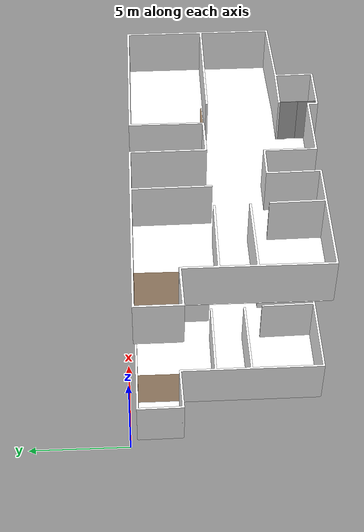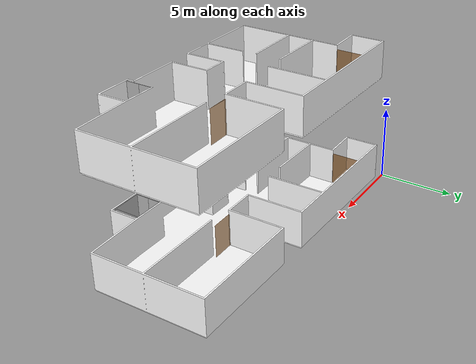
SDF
<sdf version="1.7">
 <world name="sim_world">
  <physics name="10ms" type="ode">
   <max_step_size>0.01</max_step_size>
   <real_time_factor>1.0</real_time_factor>
  </physics>
  <plugin filename="libignition-gazebo-physics-system.so" name="ignition::gazebo::systems::Physics"/>
  <plugin filename="libignition-gazebo-user-commands-system.so" name="ignition::gazebo::systems::UserCommands"/>
  <plugin filename="libignition-gazebo-scene-broadcaster-system.so" name="ignition::gazebo::systems::SceneBroadcaster"/>
  <scene><ambient>1 1 1</ambient><background>0.8 0.8 0.8</background><grid>false</grid></scene>
  <light type="directional" name="sun">
   <pose>0 0 10 0 0 0</pose>
   <diffuse>1 1 1 1</diffuse>
   <specular>0.2 0.2 0.2 1</specular>
   <attenuation>
    <range>1000</range>
    <constant>0.09</constant>
    <linear>0.001</linear>
    <quadratic>0.001</quadratic>
   </attenuation>
   <direction>-0.5 0.1 -0.9</direction>
  </light>
  <model name="null1">
   <pose>2.696709362703367 -1.4758853085117967 0.0 0 0 -1.5733022700128414</pose>
   <link name="right">
    <pose>0 0 1.11 0 0 0</pose>
    <visual name="right_visual">
     <geometry><box><size>2.102248517358333 0.03 2.2</size></box></geometry>
     <material>
      <ambient>0.5 0.25 0 0.6</ambient>
      <diffuse>0.5 0.25 0 0.6</diffuse>
      <pbr><metal><metalness>0.0</metalness></metal></pbr>
     </material>
    </visual>
    <collision name="right_collision">
     <geometry><box><size>2.102248517358333 0.03 2.2</size></box></geometry>
     <surface><contact><collide_bitmask>0x02</collide_bitmask></contact></surface>
    </collision>
    <inertial>
     <mass>50.0</mass>
     <inertia><ixx>20.17041666666667</ixx><iyy>38.58103678639712</iyy><izz>18.418120119730453</izz></inertia>
    </inertial>
   </link>
   <joint name="right_joint" type="revolute">
    <parent>world</parent>
    <child>right</child>
    <axis><xyz>0 0 -1</xyz><limit><lower>0</lower><upper>1.57</upper></limit></axis>
    <pose>1.0561242586791664 0 0 0 0 0</pose>
   </joint>
   <plugin name="door" filename="libdoor.so">
    <v_max_door>0.5</v_max_door>
    <a_max_door>0.3</a_max_door>
    <a_nom_door>0.15</a_nom_door>
    <dx_min_door>0.01</dx_min_door>
    <f_max_door>500.0</f_max_door>
    <door name="null1" type="SwingDoor" left_joint_name="empty_joint" right_joint_name="right_joint"/>
   </plugin>
  </model>
  <model name="null2">
   <pose>13.289009474905757 -4.1263730059054815 0.0 0 0 -3.118719911647879</pose>
   <link name="right">
    <pose>0 0 1.11 0 0 0</pose>
    <visual name="right_visual">
     <geometry><box><size>1.5188961164264467 0.03 2.2</size></box></geometry>
     <material>
      <ambient>0.5 0.25 0 0.6</ambient>
      <diffuse>0.5 0.25 0 0.6</diffuse>
      <pbr><metal><metalness>0.0</metalness></metal></pbr>
     </material>
    </visual>
    <collision name="right_collision">
     <geometry><box><size>1.5188961164264467 0.03 2.2</size></box></geometry>
     <surface><contact><collide_bitmask>0x02</collide_bitmask></contact></surface>
    </collision>
    <inertial>
     <mass>50.0</mass>
     <inertia><ixx>20.17041666666667</ixx><iyy>29.779355885397266</iyy><izz>9.616439218730592</izz></inertia>
    </inertial>
   </link>
   <joint name="right_joint" type="prismatic">
    <parent>world</parent>
    <child>right</child>
    <axis>
     <xyz>1 0 0</xyz>
     <limit><lower>0.0</lower><upper>1.5288961164264467</upper><effort>500.0</effort></limit>
    </axis>
   </joint>
   <plugin name="door" filename="libdoor.so">
    <v_max_door>0.2</v_max_door>
    <a_max_door>0.2</a_max_door>
    <a_nom_door>0.08</a_nom_door>
    <dx_min_door>0.001</dx_min_door>
    <f_max_door>100.0</f_max_door>
    <door name="null2" type="SlidingDoor" left_joint_name="empty_joint" right_joint_name="right_joint"/>
   </plugin>
  </model>
  <include><name>floor_L1</name><uri>model://floor_L1</uri></include>
  <model name="null3">
   <pose>2.7208773282506087 -1.4401966790662515 7.5 0 0 -1.5770408884630145</pose>
   <link name="right">
    <pose>0 0 1.11 0 0 0</pose>
    <visual name="right_visual">
     <geometry><box><size>2.095452502618806 0.03 2.2</size></box></geometry>
     <material>
      <ambient>0.5 0.25 0 0.6</ambient>
      <diffuse>0.5 0.25 0 0.6</diffuse>
      <pbr><metal><metalness>0.0</metalness></metal></pbr>
     </material>
    </visual>
    <collision name="right_collision">
     <geometry><box><size>2.095452502618806 0.03 2.2</size></box></geometry>
     <surface><contact><collide_bitmask>0x02</collide_bitmask></contact></surface>
    </collision>
    <inertial>
     <mass>50.0</mass>
     <inertia><ixx>20.17041666666667</ixx><iyy>38.46217162804758</iyy><izz>18.299254961380903</izz></inertia>
    </inertial>
   </link>
   <joint name="right_joint" type="revolute">
    <parent>world</parent>
    <child>right</child>
    <axis><xyz>0 0 -1</xyz><limit><lower>0</lower><upper>1.57</upper></limit></axis>
    <pose>1.052726251309403 0 0 0 0 0</pose>
   </joint>
   <plugin name="door" filename="libdoor.so">
    <v_max_door>0.5</v_max_door>
    <a_max_door>0.3</a_max_door>
    <a_nom_door>0.15</a_nom_door>
    <dx_min_door>0.01</dx_min_door>
    <f_max_door>500.0</f_max_door>
    <door name="null3" type="SwingDoor" left_joint_name="empty_joint" right_joint_name="right_joint"/>
   </plugin>
  </model>
  <model name="null4">
   <pose>13.269146396699625 -4.121611214964689 7.5 0 0 -3.1224585300980525</pose>
   <link name="right">
    <pose>0 0 1.11 0 0 0</pose>
    <visual name="right_visual">
     <geometry><box><size>1.5139769980286555 0.03 2.2</size></box></geometry>
     <material>
      <ambient>0.5 0.25 0 0.6</ambient>
      <diffuse>0.5 0.25 0 0.6</diffuse>
      <pbr><metal><metalness>0.0</metalness></metal></pbr>
     </material>
    </visual>
    <collision name="right_collision">
     <geometry><box><size>1.5139769980286555 0.03 2.2</size></box></geometry>
     <surface><contact><collide_bitmask>0x02</collide_bitmask></contact></surface>
    </collision>
    <inertial>
     <mass>50.0</mass>
     <inertia><ixx>20.17041666666667</ixx><iyy>29.717193127332752</iyy><izz>9.554276460666083</izz></inertia>
    </inertial>
   </link>
   <joint name="right_joint" type="prismatic">
    <parent>world</parent>
    <child>right</child>
    <axis>
     <xyz>1 0 0</xyz>
     <limit><lower>0.0</lower><upper>1.5239769980286555</upper><effort>500.0</effort></limit>
    </axis>
   </joint>
   <plugin name="door" filename="libdoor.so">
    <v_max_door>0.2</v_max_door>
    <a_max_door>0.2</a_max_door>
    <a_nom_door>0.08</a_nom_door>
    <dx_min_door>0.001</dx_min_door>
    <f_max_door>100.0</f_max_door>
    <door name="null4" type="SlidingDoor" left_joint_name="empty_joint" right_joint_name="right_joint"/>
   </plugin>
  </model>
  <include><name>floor_L2</name><uri>model://floor_L2</uri><pose>0 0 7.5 0 0 0</pose></include>
  <model name="ShaftDoor_lift_L1_door">
   <pose>13.974046214020245 -9.08928062769908 0.0 0 0 1.57</pose>
   <link name="right_door">
    <pose>0.45 0 1.25 0 0 0</pose>
    <visual name="right_door_visual">
     <geometry><box><size>0.9 0.03 2.5</size></box></geometry>
     <material>
      <ambient>0.5 0.5 0.5 1</ambient>
      <diffuse>0.7 0.7 0.7 1</diffuse>
      <specular>0.6 0.6 0.6 1</specular>
      <emissive>0.1 0.1 0.1 1</emissive>
     </material>
    </visual>
    <collision name="right_door_collision">
     <geometry><box><size>0.9 0.03 2.5</size></box></geometry>
     <surface><contact><collide_bitmask>0x02</collide_bitmask></contact></surface>
    </collision>
   </link>
   <joint name="right_joint" type="prismatic">
    <parent>world</parent>
    <child>right_door</child>
    <axis><xyz>1 0 0</xyz><limit><lower>0</lower><upper>0.9</upper></limit></axis>
   </joint>
   <link name="left_door">
    <pose>-0.45 0 1.25 0 0 0</pose>
    <visual name="left_door_visual">
     <geometry><box><size>0.9 0.03 2.5</size></box></geometry>
     <material>
      <ambient>0.5 0.5 0.5 1</ambient>
      <diffuse>0.7 0.7 0.7 1</diffuse>
      <specular>0.6 0.6 0.6 1</specular>
      <emissive>0.1 0.1 0.1 1</emissive>
     </material>
    </visual>
    <collision name="left_door_collision">
     <geometry><box><size>0.9 0.03 2.5</size></box></geometry>
     <surface><contact><collide_bitmask>0x02</collide_bitmask></contact></surface>
    </collision>
   </link>
   <joint name="left_joint" type="prismatic">
    <parent>world</parent>
    <child>left_door</child>
    <axis><xyz>1 0 0</xyz><limit><lower>-0.9</lower><upper>0</upper></limit></axis>
   </joint>
   <link name="ramp">
    <pose>0 0 -0.025 0 0 0</pose>
    <visual name="ramp_visual">
     <geometry><box><size>1.8 0.1 0.05</size></box></geometry>
     <material>
      <ambient>0.5 0.5 0.5 1</ambient>
      <diffuse>0.7 0.7 0.7 1</diffuse>
      <specular>0.6 0.6 0.6 1</specular>
      <emissive>0.1 0.1 0.1 1</emissive>
     </material>
    </visual>
    <collision name="ramp_collision">
     <geometry><box><size>1.8 0.1 0.05</size></box></geometry>
     <surface><contact><collide_bitmask>0x02</collide_bitmask></contact></surface>
    </collision>
   </link>
   <joint name="ramp_joint" type="fixed"><parent>world</parent><child>ramp</child></joint>
   <plugin name="door" filename="libdoor.so">
    <v_max_door>0.3</v_max_door>
    <a_max_door>0.2</a_max_door>
    <a_nom_door>0.1</a_nom_door>
    <dx_min_door>0.0001</dx_min_door>
    <f_max_door>35.0</f_max_door>
    <door left_joint_name="left_joint" name="ShaftDoor_lift_L1_door" right_joint_name="right_joint" type="DoubleSlidingDoor"/>
   </plugin>
  </model>
  <model name="ShaftDoor_lift_L2_door">
   <pose>13.974046214020245 -9.08928062769908 7.5 0 0 1.57</pose>
   <link name="right_door">
    <pose>0.45 0 1.25 0 0 0</pose>
    <visual name="right_door_visual">
     <geometry><box><size>0.9 0.03 2.5</size></box></geometry>
     <material>
      <ambient>0.5 0.5 0.5 1</ambient>
      <diffuse>0.7 0.7 0.7 1</diffuse>
      <specular>0.6 0.6 0.6 1</specular>
      <emissive>0.1 0.1 0.1 1</emissive>
     </material>
    </visual>
    <collision name="right_door_collision">
     <geometry><box><size>0.9 0.03 2.5</size></box></geometry>
     <surface><contact><collide_bitmask>0x02</collide_bitmask></contact></surface>
    </collision>
   </link>
   <joint name="right_joint" type="prismatic">
    <parent>world</parent>
    <child>right_door</child>
    <axis><xyz>1 0 0</xyz><limit><lower>0</lower><upper>0.9</upper></limit></axis>
   </joint>
   <link name="left_door">
    <pose>-0.45 0 1.25 0 0 0</pose>
    <visual name="left_door_visual">
     <geometry><box><size>0.9 0.03 2.5</size></box></geometry>
     <material>
      <ambient>0.5 0.5 0.5 1</ambient>
      <diffuse>0.7 0.7 0.7 1</diffuse>
      <specular>0.6 0.6 0.6 1</specular>
      <emissive>0.1 0.1 0.1 1</emissive>
     </material>
    </visual>
    <collision name="left_door_collision">
     <geometry><box><size>0.9 0.03 2.5</size></box></geometry>
     <surface><contact><collide_bitmask>0x02</collide_bitmask></contact></surface>
    </collision>
   </link>
   <joint name="left_joint" type="prismatic">
    <parent>world</parent>
    <child>left_door</child>
    <axis><xyz>1 0 0</xyz><limit><lower>-0.9</lower><upper>0</upper></limit></axis>
   </joint>
   <link name="ramp">
    <pose>0 0 -0.025 0 0 0</pose>
    <visual name="ramp_visual">
     <geometry><box><size>1.8 0.1 0.05</size></box></geometry>
     <material>
      <ambient>0.5 0.5 0.5 1</ambient>
      <diffuse>0.7 0.7 0.7 1</diffuse>
      <specular>0.6 0.6 0.6 1</specular>
      <emissive>0.1 0.1 0.1 1</emissive>
     </material>
    </visual>
    <collision name="ramp_collision">
     <geometry><box><size>1.8 0.1 0.05</size></box></geometry>
     <surface><contact><collide_bitmask>0x02</collide_bitmask></contact></surface>
    </collision>
   </link>
   <joint name="ramp_joint" type="fixed"><parent>world</parent><child>ramp</child></joint>
   <plugin name="door" filename="libdoor.so">
    <v_max_door>0.3</v_max_door>
    <a_max_door>0.2</a_max_door>
    <a_nom_door>0.1</a_nom_door>
    <dx_min_door>0.0001</dx_min_door>
    <f_max_door>35.0</f_max_door>
    <door left_joint_name="left_joint" name="ShaftDoor_lift_L2_door" right_joint_name="right_joint" type="DoubleSlidingDoor"/>
   </plugin>
  </model>
  <model name="lift">
   <link name="platform">
    <inertial>
     <mass>1200</mass>
     <inertia><ixx>400.25000000000006</ixx><iyy>324.25</iyy><izz>724.0</izz></inertia>
    </inertial>
    <visual name="floor_visual">
     <pose>0 0 -0.025 0 0 0</pose>
     <geometry><box><size>2.0 1.8 0.05</size></box></geometry>
     <material>
      <ambient>0.5 0.5 0.5 1</ambient>
      <diffuse>0.7 0.7 0.7 1</diffuse>
      <specular>0.6 0.6 0.6 1</specular>
      <emissive>0.1 0.1 0.1 1</emissive>
     </material>
    </visual>
    <collision name="floor_collision">
     <pose>0 0 -0.025 0 0 0</pose>
     <geometry><box><size>2.0 1.8 0.05</size></box></geometry>
     <surface><contact><collide_bitmask>0x01</collide_bitmask></contact></surface>
    </collision>
    <visual name="frontwall1_visual">
     <pose>0.0 0.875 1.25 0 0 0</pose>
     <geometry><box><size>2.0 0.05 2.5</size></box></geometry>
     <material>
      <ambient>0.5 0.5 0.5 1</ambient>
      <diffuse>0.7 0.7 0.7 1</diffuse>
      <specular>0.6 0.6 0.6 1</specular>
      <emissive>0.1 0.1 0.1 1</emissive>
     </material>
    </visual>
    <collision name="frontwall1_collision">
     <pose>0.0 0.875 1.25 0 0 0</pose>
     <geometry><box><size>2.0 0.05 2.5</size></box></geometry>
     <surface><contact><collide_bitmask>0x01</collide_bitmask></contact></surface>
    </collision>
    <visual name="backwall1_visual">
     <pose>0.0 -0.875 1.25 0 0 0</pose>
     <geometry><box><size>2.0 0.05 2.5</size></box></geometry>
     <material>
      <ambient>0.5 0.5 0.5 1</ambient>
      <diffuse>0.7 0.7 0.7 1</diffuse>
      <specular>0.6 0.6 0.6 1</specular>
      <emissive>0.1 0.1 0.1 1</emissive>
     </material>
    </visual>
    <collision name="backwall1_collision">
     <pose>0.0 -0.875 1.25 0 0 0</pose>
     <geometry><box><size>2.0 0.05 2.5</size></box></geometry>
     <surface><contact><collide_bitmask>0x01</collide_bitmask></contact></surface>
    </collision>
    <visual name="leftwall1_visual">
     <pose>-0.975 -0.875 1.25 0 0 1.5707963267948966</pose>
     <geometry><box><size>0.050000000000000044 0.05 2.5</size></box></geometry>
     <material>
      <ambient>0.5 0.5 0.5 1</ambient>
      <diffuse>0.7 0.7 0.7 1</diffuse>
      <specular>0.6 0.6 0.6 1</specular>
      <emissive>0.1 0.1 0.1 1</emissive>
     </material>
    </visual>
    <collision name="leftwall1_collision">
     <pose>-0.975 -0.875 1.25 0 0 1.5707963267948966</pose>
     <geometry><box><size>0.050000000000000044 0.05 2.5</size></box></geometry>
     <surface><contact><collide_bitmask>0x01</collide_bitmask></contact></surface>
    </collision>
    <visual name="leftwall2_visual">
     <pose>-0.975 0.875 1.25 0 0 1.5707963267948966</pose>
     <geometry><box><size>0.050000000000000044 0.05 2.5</size></box></geometry>
     <material>
      <ambient>0.5 0.5 0.5 1</ambient>
      <diffuse>0.7 0.7 0.7 1</diffuse>
      <specular>0.6 0.6 0.6 1</specular>
      <emissive>0.1 0.1 0.1 1</emissive>
     </material>
    </visual>
    <collision name="leftwall2_collision">
     <pose>-0.975 0.875 1.25 0 0 1.5707963267948966</pose>
     <geometry><box><size>0.050000000000000044 0.05 2.5</size></box></geometry>
     <surface><contact><collide_bitmask>0x01</collide_bitmask></contact></surface>
    </collision>
    <visual name="rightwall1_visual">
     <pose>0.975 0.0 1.25 0 0 1.5707963267948966</pose>
     <geometry><box><size>1.7 0.05 2.5</size></box></geometry>
     <material>
      <ambient>0.5 0.5 0.5 1</ambient>
      <diffuse>0.7 0.7 0.7 1</diffuse>
      <specular>0.6 0.6 0.6 1</specular>
      <emissive>0.1 0.1 0.1 1</emissive>
     </material>
    </visual>
    <collision name="rightwall1_collision">
     <pose>0.975 0.0 1.25 0 0 1.5707963267948966</pose>
     <geometry><box><size>1.7 0.05 2.5</size></box></geometry>
     <surface><contact><collide_bitmask>0x01</collide_bitmask></contact></surface>
    </collision>
   </link>
   <joint name="cabin_joint" type="prismatic">
    <parent>world</parent>
    <child>platform</child>
    <axis><xyz>0 0 1</xyz></axis>
   </joint>
   <link name="CabinDoor_lift_door_right_door">
    <pose>-0.97464165298017 0.44999985731932557 1.25 0 0 1.57</pose>
    <visual name="CabinDoor_lift_door_right_door_visual">
     <geometry><box><size>0.9 0.03 2.5</size></box></geometry>
     <material>
      <ambient>0.5 0.5 0.5 1</ambient>
      <diffuse>0.7 0.7 0.7 1</diffuse>
      <specular>0.6 0.6 0.6 1</specular>
      <emissive>0.1 0.1 0.1 1</emissive>
     </material>
    </visual>
    <collision name="CabinDoor_lift_door_right_door_collision">
     <geometry><box><size>0.9 0.03 2.5</size></box></geometry>
     <surface><contact><collide_bitmask>0x02</collide_bitmask></contact></surface>
    </collision>
   </link>
   <joint name="CabinDoor_lift_door_right_joint" type="prismatic">
    <parent>platform</parent>
    <child>CabinDoor_lift_door_right_door</child>
    <axis><xyz>1 0 0</xyz><limit><lower>0</lower><upper>0.9</upper></limit></axis>
   </joint>
   <link name="CabinDoor_lift_door_left_door">
    <pose>-0.9753583470198299 -0.44999985731932557 1.25 0 0 1.57</pose>
    <visual name="CabinDoor_lift_door_left_door_visual">
     <geometry><box><size>0.9 0.03 2.5</size></box></geometry>
     <material>
      <ambient>0.5 0.5 0.5 1</ambient>
      <diffuse>0.7 0.7 0.7 1</diffuse>
      <specular>0.6 0.6 0.6 1</specular>
      <emissive>0.1 0.1 0.1 1</emissive>
     </material>
    </visual>
    <collision name="CabinDoor_lift_door_left_door_collision">
     <geometry><box><size>0.9 0.03 2.5</size></box></geometry>
     <surface><contact><collide_bitmask>0x02</collide_bitmask></contact></surface>
    </collision>
   </link>
   <joint name="CabinDoor_lift_door_left_joint" type="prismatic">
    <parent>platform</parent>
    <child>CabinDoor_lift_door_left_door</child>
    <axis><xyz>1 0 0</xyz><limit><lower>-0.9</lower><upper>0</upper></limit></axis>
   </joint>
   <plugin name="door" filename="libdoor.so">
    <v_max_door>0.3</v_max_door>
    <a_max_door>0.2</a_max_door>
    <a_nom_door>0.1</a_nom_door>
    <dx_min_door>0.0001</dx_min_door>
    <f_max_door>35.0</f_max_door>
    <door left_joint_name="CabinDoor_lift_door_left_joint" name="CabinDoor_lift_door" right_joint_name="CabinDoor_lift_door_right_joint" type="DoubleSlidingDoor"/>
   </plugin>
   <plugin name="lift" filename="liblift.so">
    <lift_name>lift</lift_name>
    <floor name="L1" elevation="0.0">
     <door_pair cabin_door="CabinDoor_lift_door" shaft_door="ShaftDoor_lift_L1_door"/>
    </floor>
    <floor name="L2" elevation="7.5">
     <door_pair cabin_door="CabinDoor_lift_door" shaft_door="ShaftDoor_lift_L2_door"/>
    </floor>
    <initial_floor>L1</initial_floor>
    <v_max_cabin>2.0</v_max_cabin>
    <a_max_cabin>1.2</a_max_cabin>
    <a_nom_cabin>1.0</a_nom_cabin>
    <dx_min_cabin>0.001</dx_min_cabin>
    <f_max_cabin>25323.0</f_max_cabin>
    <cabin_joint_name>cabin_joint</cabin_joint_name>
   </plugin>
   <pose>15.024046214020245 -9.08928062769908 0 0 0 0.0</pose>
  </model>
  <rmf_charger_waypoints name="charger_waypoints">
   <rmf_vertex name="w1" x="1.4636949791993532" y="-1.4226328173048066" level="L1"/>
   <rmf_vertex name="w9" x="18.76310893247248" y="-5.523609303809365" level="L1"/>
   <rmf_vertex name="w8" x="18.978043686139245" y="-2.2643002034297415" level="L1"/>
   <rmf_vertex name="w11" x="13.334584267634808" y="-8.941988845466106" level="L2"/>
  </rmf_charger_waypoints>
 </world>
</sdf>

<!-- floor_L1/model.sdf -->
<sdf version="1.7">
  <model name="floor_L1">
    <static>true</static>
    <link name="floor_1">
      <visual name="visual">
        <geometry>
          <mesh>
            <uri>model://floor_L1/meshes/floor_1.obj</uri>
          </mesh>
        </geometry>
        <material>
          <diffuse>1.0 1.0 1.0</diffuse>
          <specular>0.1 0.1 0.1</specular>
          <pbr>
            <metal>
              <metalness>0.0</metalness>
              <albedo_map>model://floor_L1/meshes/blue_linoleum.png</albedo_map>
            </metal>
          </pbr>
          <script>
            <uri>model://floor_L1/meshes/</uri>
            <name>floor_1_Diffuse</name>
          </script>
        </material>
      </visual>
      <collision name="collision">
        <geometry>
          <mesh>
            <uri>model://floor_L1/meshes/floor_1.obj</uri>
          </mesh>
        </geometry>
        <surface>
          <contact>
            <collide_bitmask>0x01</collide_bitmask>
          </contact>
        </surface>
      </collision>
    </link>
    <link name="wall_1">
      <visual name="wall_1">
        <geometry>
          <mesh>
            <uri>model://floor_L1/meshes/wall_1.obj</uri>
          </mesh>
        </geometry>
        <transparency>0.0</transparency>
        <material>
          <diffuse>1.0 1.0 1.0</diffuse>
          <specular>0.1 0.1 0.1</specular>
          <pbr>
            <metal>
              <metalness>0.0</metalness>
              <albedo_map>model://floor_L1/meshes/default.png</albedo_map>
            </metal>
          </pbr>
          <script>
            <uri>model://floor_L1/meshes/</uri>
            <name>wall_1_Diffuse</name>
          </script>
        </material>
      </visual>
      <collision name="collision">
        <geometry>
          <mesh>
            <uri>model://floor_L1/meshes/wall_1.obj</uri>
          </mesh>
        </geometry>
        <surface>
          <contact>
            <collide_bitmask>0x01</collide_bitmask>
          </contact>
        </surface>
      </collision>
      <pose>0.4472121508039251 -10.128629571804133 0 0 0 0</pose>
    </link>
  </model>
</sdf>

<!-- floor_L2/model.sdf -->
<sdf version="1.7">
  <model name="floor_L2">
    <static>true</static>
    <link name="floor_1">
      <visual name="visual">
        <geometry>
          <mesh>
            <uri>model://floor_L2/meshes/floor_1.obj</uri>
          </mesh>
        </geometry>
        <material>
          <diffuse>1.0 1.0 1.0</diffuse>
          <specular>0.1 0.1 0.1</specular>
          <pbr>
            <metal>
              <metalness>0.0</metalness>
              <albedo_map>model://floor_L2/meshes/blue_linoleum.png</albedo_map>
            </metal>
          </pbr>
          <script>
            <uri>model://floor_L2/meshes/</uri>
            <name>floor_1_Diffuse</name>
          </script>
        </material>
      </visual>
      <collision name="collision">
        <geometry>
          <mesh>
            <uri>model://floor_L2/meshes/floor_1.obj</uri>
          </mesh>
        </geometry>
        <surface>
          <contact>
            <collide_bitmask>0x01</collide_bitmask>
          </contact>
        </surface>
      </collision>
    </link>
    <link name="wall_1">
      <visual name="wall_1">
        <geometry>
          <mesh>
            <uri>model://floor_L2/meshes/wall_1.obj</uri>
          </mesh>
        </geometry>
        <transparency>0.0</transparency>
        <material>
          <diffuse>1.0 1.0 1.0</diffuse>
          <specular>0.1 0.1 0.1</specular>
          <pbr>
            <metal>
              <metalness>0.0</metalness>
              <albedo_map>model://floor_L2/meshes/default.png</albedo_map>
            </metal>
          </pbr>
          <script>
            <uri>model://floor_L2/meshes/</uri>
            <name>wall_1_Diffuse</name>
          </script>
        </material>
      </visual>
      <collision name="collision">
        <geometry>
          <mesh>
            <uri>model://floor_L2/meshes/wall_1.obj</uri>
          </mesh>
        </geometry>
        <surface>
          <contact>
            <collide_bitmask>0x01</collide_bitmask>
          </contact>
        </surface>
      </collision>
      <pose>0.4827128015503437 -10.115442307671094 0 0 0 0</pose>
    </link>
  </model>
</sdf>
